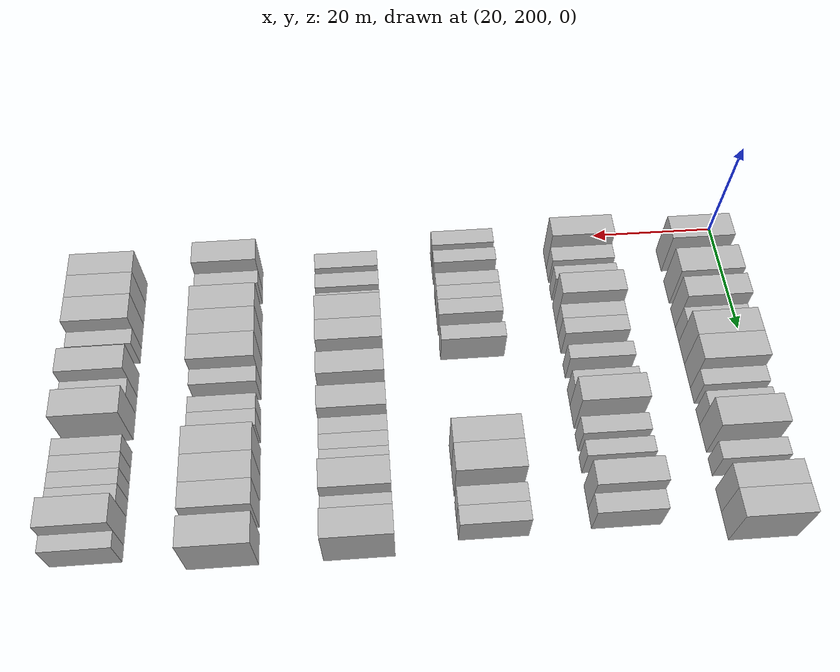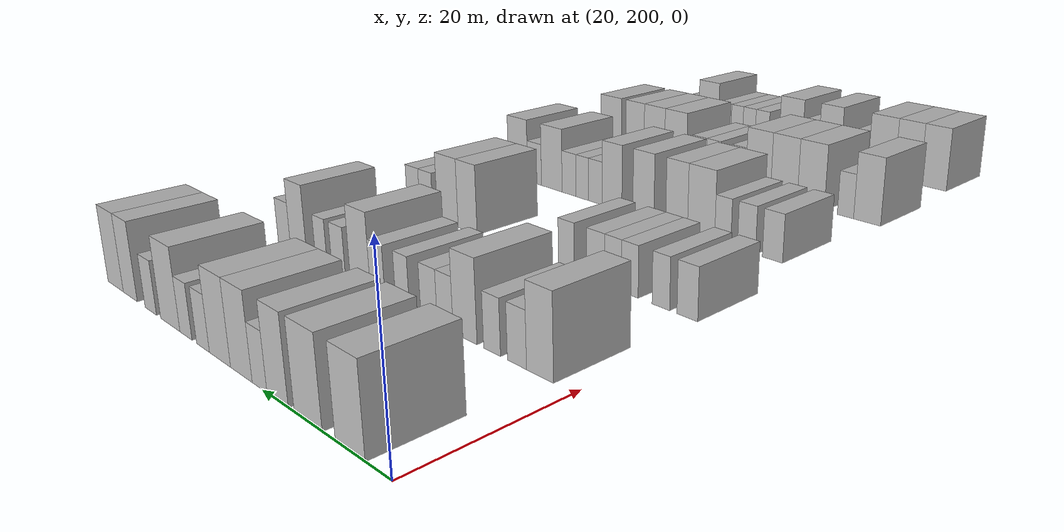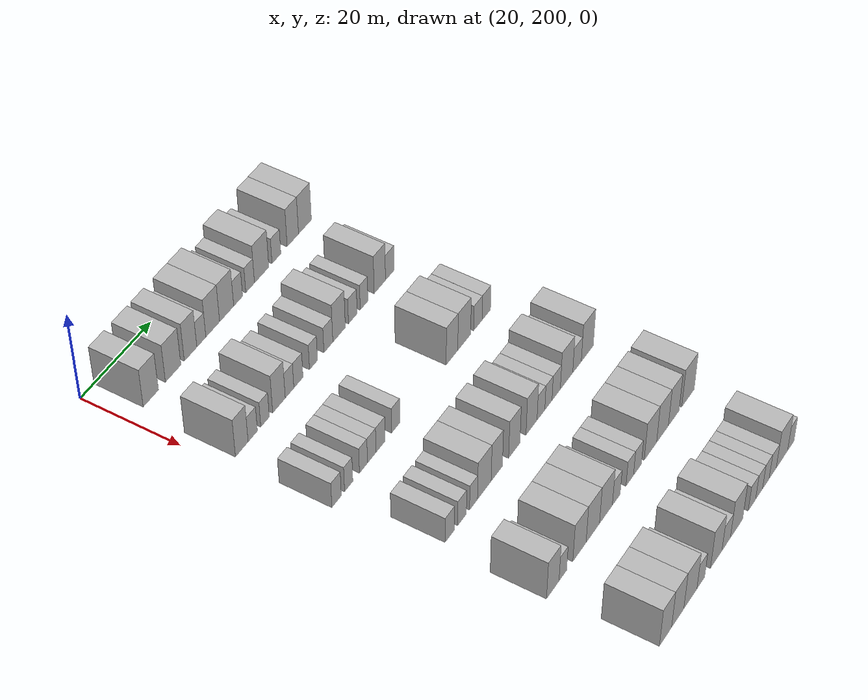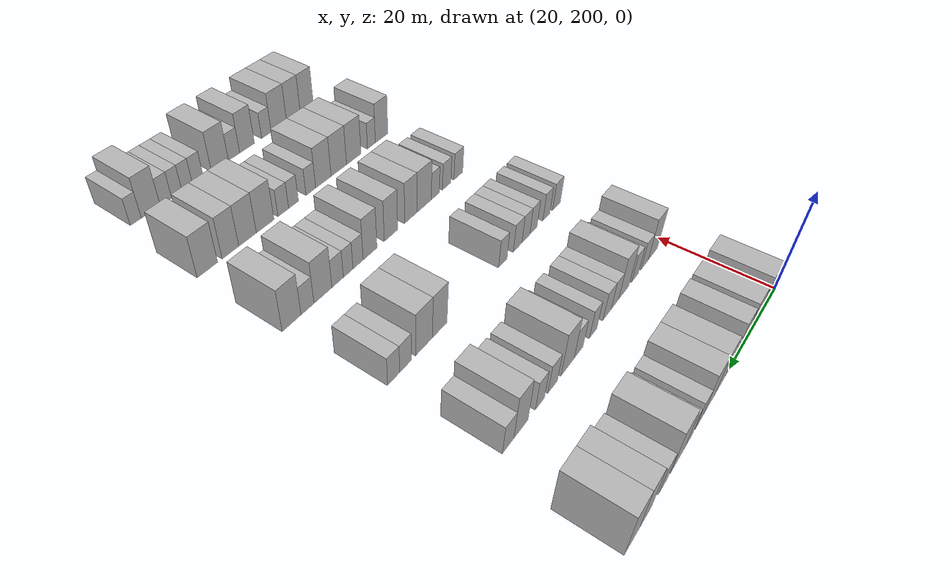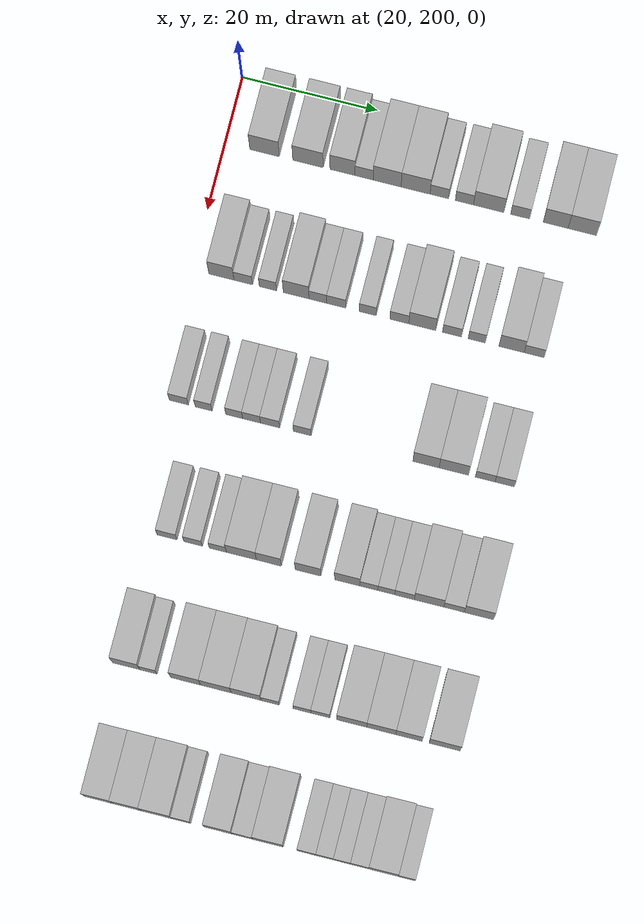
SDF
<sdf version="1.6">
 <world name="default">
  <model name="building_132">
   <static>1</static>
   <pose>25.0000 205.8485 0 0.000000 0.000000 0.000000</pose>
   <link name="link">
    <pose>0 0 4.50 0 0 0</pose>
    <collision name="collision"><geometry><box><size>10.0000 4.3487 9.0000</size></box></geometry></collision>
    <visual name="visual">
     <cast_shadows>0</cast_shadows>
     <geometry><box><size>10.0000 4.3487 9.0000</size></box></geometry>
     <material>
      <script>
       <uri>model://HANNAS_wall/materials/scripts</uri>
       <uri>model://HANNAS_wall/materials/textures</uri>
       <name>vrc/HANNAS_wall</name>
      </script>
     </material>
    </visual>
   </link>
  </model>
  <model name="building_133">
   <static>1</static>
   <pose>25.0000 212.2656 0 0.000000 0.000000 0.000000</pose>
   <link name="link">
    <pose>0 0 4.50 0 0 0</pose>
    <collision name="collision"><geometry><box><size>10.0000 4.4857 9.0000</size></box></geometry></collision>
    <visual name="visual">
     <cast_shadows>0</cast_shadows>
     <geometry><box><size>10.0000 4.4857 9.0000</size></box></geometry>
     <material>
      <script>
       <uri>model://HANNAS_wall/materials/scripts</uri>
       <uri>model://HANNAS_wall/materials/textures</uri>
       <name>vrc/HANNAS_wall</name>
      </script>
     </material>
    </visual>
   </link>
  </model>
  <model name="building_134">
   <static>1</static>
   <pose>25.0000 217.3530 0 0.000000 0.000000 0.000000</pose>
   <link name="link">
    <pose>0 0 4.50 0 0 0</pose>
    <collision name="collision"><geometry><box><size>10.0000 3.6891 9.0000</size></box></geometry></collision>
    <visual name="visual">
     <cast_shadows>0</cast_shadows>
     <geometry><box><size>10.0000 3.6891 9.0000</size></box></geometry>
     <material>
      <script>
       <uri>model://HANNAS_wall/materials/scripts</uri>
       <uri>model://HANNAS_wall/materials/textures</uri>
       <name>vrc/HANNAS_wall</name>
      </script>
     </material>
    </visual>
   </link>
  </model>
  <model name="building_135">
   <static>1</static>
   <pose>25.0000 220.5337 0 0.000000 0.000000 0.000000</pose>
   <link name="link">
    <pose>0 0 3.00 0 0 0</pose>
    <collision name="collision"><geometry><box><size>10.0000 2.6723 6.0000</size></box></geometry></collision>
    <visual name="visual">
     <cast_shadows>0</cast_shadows>
     <geometry><box><size>10.0000 2.6723 6.0000</size></box></geometry>
     <material>
      <script>
       <uri>model://HANNAS_wall/materials/scripts</uri>
       <uri>model://HANNAS_wall/materials/textures</uri>
       <name>vrc/HANNAS_wall</name>
      </script>
     </material>
    </visual>
   </link>
  </model>
  <model name="building_136">
   <static>1</static>
   <pose>25.0000 223.9278 0 0.000000 0.000000 0.000000</pose>
   <link name="link">
    <pose>0 0 4.50 0 0 0</pose>
    <collision name="collision"><geometry><box><size>10.0000 4.1159 9.0000</size></box></geometry></collision>
    <visual name="visual">
     <cast_shadows>0</cast_shadows>
     <geometry><box><size>10.0000 4.1159 9.0000</size></box></geometry>
     <material>
      <script>
       <uri>model://HANNAS_wall/materials/scripts</uri>
       <uri>model://HANNAS_wall/materials/textures</uri>
       <name>vrc/HANNAS_wall</name>
      </script>
     </material>
    </visual>
   </link>
  </model>
  <model name="building_137">
   <static>1</static>
   <pose>25.0000 228.1173 0 0.000000 0.000000 0.000000</pose>
   <link name="link">
    <pose>0 0 4.50 0 0 0</pose>
    <collision name="collision"><geometry><box><size>10.0000 4.2632 9.0000</size></box></geometry></collision>
    <visual name="visual">
     <cast_shadows>0</cast_shadows>
     <geometry><box><size>10.0000 4.2632 9.0000</size></box></geometry>
     <material>
      <script>
       <uri>model://HANNAS_wall/materials/scripts</uri>
       <uri>model://HANNAS_wall/materials/textures</uri>
       <name>vrc/HANNAS_wall</name>
      </script>
     </material>
    </visual>
   </link>
  </model>
  <model name="building_138">
   <static>1</static>
   <pose>25.0000 231.6056 0 0.000000 0.000000 0.000000</pose>
   <link name="link">
    <pose>0 0 3.00 0 0 0</pose>
    <collision name="collision"><geometry><box><size>10.0000 2.7133 6.0000</size></box></geometry></collision>
    <visual name="visual">
     <cast_shadows>0</cast_shadows>
     <geometry><box><size>10.0000 2.7133 6.0000</size></box></geometry>
     <material>
      <script>
       <uri>model://HANNAS_wall/materials/scripts</uri>
       <uri>model://HANNAS_wall/materials/textures</uri>
       <name>vrc/HANNAS_wall</name>
      </script>
     </material>
    </visual>
   </link>
  </model>
  <model name="building_139">
   <static>1</static>
   <pose>25.0000 235.2960 0 0.000000 0.000000 0.000000</pose>
   <link name="link">
    <pose>0 0 3.00 0 0 0</pose>
    <collision name="collision"><geometry><box><size>10.0000 2.6675 6.0000</size></box></geometry></collision>
    <visual name="visual">
     <cast_shadows>0</cast_shadows>
     <geometry><box><size>10.0000 2.6675 6.0000</size></box></geometry>
     <material>
      <script>
       <uri>model://HANNAS_wall/materials/scripts</uri>
       <uri>model://HANNAS_wall/materials/textures</uri>
       <name>vrc/HANNAS_wall</name>
      </script>
     </material>
    </visual>
   </link>
  </model>
  <model name="building_140">
   <static>1</static>
   <pose>25.0000 238.8659 0 0.000000 0.000000 0.000000</pose>
   <link name="link">
    <pose>0 0 4.50 0 0 0</pose>
    <collision name="collision"><geometry><box><size>10.0000 4.4723 9.0000</size></box></geometry></collision>
    <visual name="visual">
     <cast_shadows>0</cast_shadows>
     <geometry><box><size>10.0000 4.4723 9.0000</size></box></geometry>
     <material>
      <script>
       <uri>model://HANNAS_wall/materials/scripts</uri>
       <uri>model://HANNAS_wall/materials/textures</uri>
       <name>vrc/HANNAS_wall</name>
      </script>
     </material>
    </visual>
   </link>
  </model>
  <model name="building_141">
   <static>1</static>
   <pose>25.0000 243.4970 0 0.000000 0.000000 0.000000</pose>
   <link name="link">
    <pose>0 0 3.00 0 0 0</pose>
    <collision name="collision"><geometry><box><size>10.0000 2.7900 6.0000</size></box></geometry></collision>
    <visual name="visual">
     <cast_shadows>0</cast_shadows>
     <geometry><box><size>10.0000 2.7900 6.0000</size></box></geometry>
     <material>
      <script>
       <uri>model://HANNAS_wall/materials/scripts</uri>
       <uri>model://HANNAS_wall/materials/textures</uri>
       <name>vrc/HANNAS_wall</name>
      </script>
     </material>
    </visual>
   </link>
  </model>
  <model name="building_142">
   <static>1</static>
   <pose>25.0000 248.7116 0 0.000000 0.000000 0.000000</pose>
   <link name="link">
    <pose>0 0 4.50 0 0 0</pose>
    <collision name="collision"><geometry><box><size>10.0000 3.6392 9.0000</size></box></geometry></collision>
    <visual name="visual">
     <cast_shadows>0</cast_shadows>
     <geometry><box><size>10.0000 3.6392 9.0000</size></box></geometry>
     <material>
      <script>
       <uri>model://HANNAS_wall/materials/scripts</uri>
       <uri>model://HANNAS_wall/materials/textures</uri>
       <name>vrc/HANNAS_wall</name>
      </script>
     </material>
    </visual>
   </link>
  </model>
  <model name="building_143">
   <static>1</static>
   <pose>25.0000 252.6149 0 0.000000 0.000000 0.000000</pose>
   <link name="link">
    <pose>0 0 4.50 0 0 0</pose>
    <collision name="collision"><geometry><box><size>10.0000 4.1674 9.0000</size></box></geometry></collision>
    <visual name="visual">
     <cast_shadows>0</cast_shadows>
     <geometry><box><size>10.0000 4.1674 9.0000</size></box></geometry>
     <material>
      <script>
       <uri>model://HANNAS_wall/materials/scripts</uri>
       <uri>model://HANNAS_wall/materials/textures</uri>
       <name>vrc/HANNAS_wall</name>
      </script>
     </material>
    </visual>
   </link>
  </model>
  <model name="building_294">
   <static>1</static>
   <pose>44.0000 204.4258 0 0.000000 0.000000 0.000000</pose>
   <link name="link">
    <pose>0 0 4.50 0 0 0</pose>
    <collision name="collision"><geometry><box><size>10.0000 3.6777 9.0000</size></box></geometry></collision>
    <visual name="visual">
     <cast_shadows>0</cast_shadows>
     <geometry><box><size>10.0000 3.6777 9.0000</size></box></geometry>
     <material>
      <script>
       <uri>model://HANNAS_wall/materials/scripts</uri>
       <uri>model://HANNAS_wall/materials/textures</uri>
       <name>vrc/HANNAS_wall</name>
      </script>
     </material>
    </visual>
   </link>
  </model>
  <model name="building_295">
   <static>1</static>
   <pose>44.0000 207.6254 0 0.000000 0.000000 0.000000</pose>
   <link name="link">
    <pose>0 0 3.00 0 0 0</pose>
    <collision name="collision"><geometry><box><size>10.0000 2.7216 6.0000</size></box></geometry></collision>
    <visual name="visual">
     <cast_shadows>0</cast_shadows>
     <geometry><box><size>10.0000 2.7216 6.0000</size></box></geometry>
     <material>
      <script>
       <uri>model://HANNAS_wall/materials/scripts</uri>
       <uri>model://HANNAS_wall/materials/textures</uri>
       <name>vrc/HANNAS_wall</name>
      </script>
     </material>
    </visual>
   </link>
  </model>
  <model name="building_296">
   <static>1</static>
   <pose>44.0000 211.2479 0 0.000000 0.000000 0.000000</pose>
   <link name="link">
    <pose>0 0 3.00 0 0 0</pose>
    <collision name="collision"><geometry><box><size>10.0000 2.5233 6.0000</size></box></geometry></collision>
    <visual name="visual">
     <cast_shadows>0</cast_shadows>
     <geometry><box><size>10.0000 2.5233 6.0000</size></box></geometry>
     <material>
      <script>
       <uri>model://HANNAS_wall/materials/scripts</uri>
       <uri>model://HANNAS_wall/materials/textures</uri>
       <name>vrc/HANNAS_wall</name>
      </script>
     </material>
    </visual>
   </link>
  </model>
  <model name="building_297">
   <static>1</static>
   <pose>44.0000 215.3899 0 0.000000 0.000000 0.000000</pose>
   <link name="link">
    <pose>0 0 4.50 0 0 0</pose>
    <collision name="collision"><geometry><box><size>10.0000 3.7606 9.0000</size></box></geometry></collision>
    <visual name="visual">
     <cast_shadows>0</cast_shadows>
     <geometry><box><size>10.0000 3.7606 9.0000</size></box></geometry>
     <material>
      <script>
       <uri>model://HANNAS_wall/materials/scripts</uri>
       <uri>model://HANNAS_wall/materials/textures</uri>
       <name>vrc/HANNAS_wall</name>
      </script>
     </material>
    </visual>
   </link>
  </model>
  <model name="building_298">
   <static>1</static>
   <pose>44.0000 218.5710 0 0.000000 0.000000 0.000000</pose>
   <link name="link">
    <pose>0 0 3.00 0 0 0</pose>
    <collision name="collision"><geometry><box><size>10.0000 2.6016 6.0000</size></box></geometry></collision>
    <visual name="visual">
     <cast_shadows>0</cast_shadows>
     <geometry><box><size>10.0000 2.6016 6.0000</size></box></geometry>
     <material>
      <script>
       <uri>model://HANNAS_wall/materials/scripts</uri>
       <uri>model://HANNAS_wall/materials/textures</uri>
       <name>vrc/HANNAS_wall</name>
      </script>
     </material>
    </visual>
   </link>
  </model>
  <model name="building_299">
   <static>1</static>
   <pose>44.0000 221.2631 0 0.000000 0.000000 0.000000</pose>
   <link name="link">
    <pose>0 0 3.00 0 0 0</pose>
    <collision name="collision"><geometry><box><size>10.0000 2.7826 6.0000</size></box></geometry></collision>
    <visual name="visual">
     <cast_shadows>0</cast_shadows>
     <geometry><box><size>10.0000 2.7826 6.0000</size></box></geometry>
     <material>
      <script>
       <uri>model://HANNAS_wall/materials/scripts</uri>
       <uri>model://HANNAS_wall/materials/textures</uri>
       <name>vrc/HANNAS_wall</name>
      </script>
     </material>
    </visual>
   </link>
  </model>
  <model name="building_300">
   <static>1</static>
   <pose>44.0000 225.8837 0 0.000000 0.000000 0.000000</pose>
   <link name="link">
    <pose>0 0 3.00 0 0 0</pose>
    <collision name="collision"><geometry><box><size>10.0000 2.4587 6.0000</size></box></geometry></collision>
    <visual name="visual">
     <cast_shadows>0</cast_shadows>
     <geometry><box><size>10.0000 2.4587 6.0000</size></box></geometry>
     <material>
      <script>
       <uri>model://HANNAS_wall/materials/scripts</uri>
       <uri>model://HANNAS_wall/materials/textures</uri>
       <name>vrc/HANNAS_wall</name>
      </script>
     </material>
    </visual>
   </link>
  </model>
  <model name="building_301">
   <static>1</static>
   <pose>44.0000 230.5032 0 0.000000 0.000000 0.000000</pose>
   <link name="link">
    <pose>0 0 3.00 0 0 0</pose>
    <collision name="collision"><geometry><box><size>10.0000 2.7803 6.0000</size></box></geometry></collision>
    <visual name="visual">
     <cast_shadows>0</cast_shadows>
     <geometry><box><size>10.0000 2.7803 6.0000</size></box></geometry>
     <material>
      <script>
       <uri>model://HANNAS_wall/materials/scripts</uri>
       <uri>model://HANNAS_wall/materials/textures</uri>
       <name>vrc/HANNAS_wall</name>
      </script>
     </material>
    </visual>
   </link>
  </model>
  <model name="building_302">
   <static>1</static>
   <pose>44.0000 233.8600 0 0.000000 0.000000 0.000000</pose>
   <link name="link">
    <pose>0 0 4.50 0 0 0</pose>
    <collision name="collision"><geometry><box><size>10.0000 3.9333 9.0000</size></box></geometry></collision>
    <visual name="visual">
     <cast_shadows>0</cast_shadows>
     <geometry><box><size>10.0000 3.9333 9.0000</size></box></geometry>
     <material>
      <script>
       <uri>model://HANNAS_wall/materials/scripts</uri>
       <uri>model://HANNAS_wall/materials/textures</uri>
       <name>vrc/HANNAS_wall</name>
      </script>
     </material>
    </visual>
   </link>
  </model>
  <model name="building_303">
   <static>1</static>
   <pose>44.0000 238.2048 0 0.000000 0.000000 0.000000</pose>
   <link name="link">
    <pose>0 0 3.00 0 0 0</pose>
    <collision name="collision"><geometry><box><size>10.0000 2.7564 6.0000</size></box></geometry></collision>
    <visual name="visual">
     <cast_shadows>0</cast_shadows>
     <geometry><box><size>10.0000 2.7564 6.0000</size></box></geometry>
     <material>
      <script>
       <uri>model://HANNAS_wall/materials/scripts</uri>
       <uri>model://HANNAS_wall/materials/textures</uri>
       <name>vrc/HANNAS_wall</name>
      </script>
     </material>
    </visual>
   </link>
  </model>
  <model name="building_304">
   <static>1</static>
   <pose>44.0000 241.8295 0 0.000000 0.000000 0.000000</pose>
   <link name="link">
    <pose>0 0 3.00 0 0 0</pose>
    <collision name="collision"><geometry><box><size>10.0000 2.4929 6.0000</size></box></geometry></collision>
    <visual name="visual">
     <cast_shadows>0</cast_shadows>
     <geometry><box><size>10.0000 2.4929 6.0000</size></box></geometry>
     <material>
      <script>
       <uri>model://HANNAS_wall/materials/scripts</uri>
       <uri>model://HANNAS_wall/materials/textures</uri>
       <name>vrc/HANNAS_wall</name>
      </script>
     </material>
    </visual>
   </link>
  </model>
  <model name="building_305">
   <static>1</static>
   <pose>44.0000 246.9206 0 0.000000 0.000000 0.000000</pose>
   <link name="link">
    <pose>0 0 4.50 0 0 0</pose>
    <collision name="collision"><geometry><box><size>10.0000 3.6895 9.0000</size></box></geometry></collision>
    <visual name="visual">
     <cast_shadows>0</cast_shadows>
     <geometry><box><size>10.0000 3.6895 9.0000</size></box></geometry>
     <material>
      <script>
       <uri>model://HANNAS_wall/materials/scripts</uri>
       <uri>model://HANNAS_wall/materials/textures</uri>
       <name>vrc/HANNAS_wall</name>
      </script>
     </material>
    </visual>
   </link>
  </model>
  <model name="building_306">
   <static>1</static>
   <pose>44.0000 250.2170 0 0.000000 0.000000 0.000000</pose>
   <link name="link">
    <pose>0 0 3.00 0 0 0</pose>
    <collision name="collision"><geometry><box><size>10.0000 2.9032 6.0000</size></box></geometry></collision>
    <visual name="visual">
     <cast_shadows>0</cast_shadows>
     <geometry><box><size>10.0000 2.9032 6.0000</size></box></geometry>
     <material>
      <script>
       <uri>model://HANNAS_wall/materials/scripts</uri>
       <uri>model://HANNAS_wall/materials/textures</uri>
       <name>vrc/HANNAS_wall</name>
      </script>
     </material>
    </visual>
   </link>
  </model>
  <model name="building_469">
   <static>1</static>
   <pose>63.0000 203.1281 0 0.000000 0.000000 0.000000</pose>
   <link name="link">
    <pose>0 0 3.00 0 0 0</pose>
    <collision name="collision"><geometry><box><size>10.0000 2.7873 6.0000</size></box></geometry></collision>
    <visual name="visual">
     <cast_shadows>0</cast_shadows>
     <geometry><box><size>10.0000 2.7873 6.0000</size></box></geometry>
     <material>
      <script>
       <uri>model://HANNAS_wall/materials/scripts</uri>
       <uri>model://HANNAS_wall/materials/textures</uri>
       <name>vrc/HANNAS_wall</name>
      </script>
     </material>
    </visual>
   </link>
  </model>
  <model name="building_470">
   <static>1</static>
   <pose>63.0000 206.7562 0 0.000000 0.000000 0.000000</pose>
   <link name="link">
    <pose>0 0 3.00 0 0 0</pose>
    <collision name="collision"><geometry><box><size>10.0000 2.4690 6.0000</size></box></geometry></collision>
    <visual name="visual">
     <cast_shadows>0</cast_shadows>
     <geometry><box><size>10.0000 2.4690 6.0000</size></box></geometry>
     <material>
      <script>
       <uri>model://HANNAS_wall/materials/scripts</uri>
       <uri>model://HANNAS_wall/materials/textures</uri>
       <name>vrc/HANNAS_wall</name>
      </script>
     </material>
    </visual>
   </link>
  </model>
  <model name="building_471">
   <static>1</static>
   <pose>63.0000 211.2146 0 0.000000 0.000000 0.000000</pose>
   <link name="link">
    <pose>0 0 3.00 0 0 0</pose>
    <collision name="collision"><geometry><box><size>10.0000 2.4478 6.0000</size></box></geometry></collision>
    <visual name="visual">
     <cast_shadows>0</cast_shadows>
     <geometry><box><size>10.0000 2.4478 6.0000</size></box></geometry>
     <material>
      <script>
       <uri>model://HANNAS_wall/materials/scripts</uri>
       <uri>model://HANNAS_wall/materials/textures</uri>
       <name>vrc/HANNAS_wall</name>
      </script>
     </material>
    </visual>
   </link>
  </model>
  <model name="building_472">
   <static>1</static>
   <pose>63.0000 213.7430 0 0.000000 0.000000 0.000000</pose>
   <link name="link">
    <pose>0 0 3.00 0 0 0</pose>
    <collision name="collision"><geometry><box><size>10.0000 2.6089 6.0000</size></box></geometry></collision>
    <visual name="visual">
     <cast_shadows>0</cast_shadows>
     <geometry><box><size>10.0000 2.6089 6.0000</size></box></geometry>
     <material>
      <script>
       <uri>model://HANNAS_wall/materials/scripts</uri>
       <uri>model://HANNAS_wall/materials/textures</uri>
       <name>vrc/HANNAS_wall</name>
      </script>
     </material>
    </visual>
   </link>
  </model>
  <model name="building_473">
   <static>1</static>
   <pose>63.0000 216.4530 0 0.000000 0.000000 0.000000</pose>
   <link name="link">
    <pose>0 0 3.00 0 0 0</pose>
    <collision name="collision"><geometry><box><size>10.0000 2.8112 6.0000</size></box></geometry></collision>
    <visual name="visual">
     <cast_shadows>0</cast_shadows>
     <geometry><box><size>10.0000 2.8112 6.0000</size></box></geometry>
     <material>
      <script>
       <uri>model://HANNAS_wall/materials/scripts</uri>
       <uri>model://HANNAS_wall/materials/textures</uri>
       <name>vrc/HANNAS_wall</name>
      </script>
     </material>
    </visual>
   </link>
  </model>
  <model name="building_474">
   <static>1</static>
   <pose>63.0000 221.1542 0 0.000000 0.000000 0.000000</pose>
   <link name="link">
    <pose>0 0 3.00 0 0 0</pose>
    <collision name="collision"><geometry><box><size>10.0000 2.5912 6.0000</size></box></geometry></collision>
    <visual name="visual">
     <cast_shadows>0</cast_shadows>
     <geometry><box><size>10.0000 2.5912 6.0000</size></box></geometry>
     <material>
      <script>
       <uri>model://HANNAS_wall/materials/scripts</uri>
       <uri>model://HANNAS_wall/materials/textures</uri>
       <name>vrc/HANNAS_wall</name>
      </script>
     </material>
    </visual>
   </link>
  </model>
  <model name="building_475">
   <static>1</static>
   <pose>63.0000 239.1780 0 0.000000 0.000000 0.000000</pose>
   <link name="link">
    <pose>0 0 4.50 0 0 0</pose>
    <collision name="collision"><geometry><box><size>10.0000 3.8188 9.0000</size></box></geometry></collision>
    <visual name="visual">
     <cast_shadows>0</cast_shadows>
     <geometry><box><size>10.0000 3.8188 9.0000</size></box></geometry>
     <material>
      <script>
       <uri>model://HANNAS_wall/materials/scripts</uri>
       <uri>model://HANNAS_wall/materials/textures</uri>
       <name>vrc/HANNAS_wall</name>
      </script>
     </material>
    </visual>
   </link>
  </model>
  <model name="building_476">
   <static>1</static>
   <pose>63.0000 243.2234 0 0.000000 0.000000 0.000000</pose>
   <link name="link">
    <pose>0 0 4.50 0 0 0</pose>
    <collision name="collision"><geometry><box><size>10.0000 4.2720 9.0000</size></box></geometry></collision>
    <visual name="visual">
     <cast_shadows>0</cast_shadows>
     <geometry><box><size>10.0000 4.2720 9.0000</size></box></geometry>
     <material>
      <script>
       <uri>model://HANNAS_wall/materials/scripts</uri>
       <uri>model://HANNAS_wall/materials/textures</uri>
       <name>vrc/HANNAS_wall</name>
      </script>
     </material>
    </visual>
   </link>
  </model>
  <model name="building_477">
   <static>1</static>
   <pose>63.0000 247.7818 0 0.000000 0.000000 0.000000</pose>
   <link name="link">
    <pose>0 0 3.00 0 0 0</pose>
    <collision name="collision"><geometry><box><size>10.0000 2.8447 6.0000</size></box></geometry></collision>
    <visual name="visual">
     <cast_shadows>0</cast_shadows>
     <geometry><box><size>10.0000 2.8447 6.0000</size></box></geometry>
     <material>
      <script>
       <uri>model://HANNAS_wall/materials/scripts</uri>
       <uri>model://HANNAS_wall/materials/textures</uri>
       <name>vrc/HANNAS_wall</name>
      </script>
     </material>
    </visual>
   </link>
  </model>
  <model name="building_478">
   <static>1</static>
   <pose>63.0000 250.6142 0 0.000000 0.000000 0.000000</pose>
   <link name="link">
    <pose>0 0 3.00 0 0 0</pose>
    <collision name="collision"><geometry><box><size>10.0000 2.8200 6.0000</size></box></geometry></collision>
    <visual name="visual">
     <cast_shadows>0</cast_shadows>
     <geometry><box><size>10.0000 2.8200 6.0000</size></box></geometry>
     <material>
      <script>
       <uri>model://HANNAS_wall/materials/scripts</uri>
       <uri>model://HANNAS_wall/materials/textures</uri>
       <name>vrc/HANNAS_wall</name>
      </script>
     </material>
    </visual>
   </link>
  </model>
  <model name="building_643">
   <static>1</static>
   <pose>82.0000 206.3991 0 0.000000 0.000000 0.000000</pose>
   <link name="link">
    <pose>0 0 3.00 0 0 0</pose>
    <collision name="collision"><geometry><box><size>10.0000 2.8870 6.0000</size></box></geometry></collision>
    <visual name="visual">
     <cast_shadows>0</cast_shadows>
     <geometry><box><size>10.0000 2.8870 6.0000</size></box></geometry>
     <material>
      <script>
       <uri>model://HANNAS_wall/materials/scripts</uri>
       <uri>model://HANNAS_wall/materials/textures</uri>
       <name>vrc/HANNAS_wall</name>
      </script>
     </material>
    </visual>
   </link>
  </model>
  <model name="building_644">
   <static>1</static>
   <pose>82.0000 210.1866 0 0.000000 0.000000 0.000000</pose>
   <link name="link">
    <pose>0 0 3.00 0 0 0</pose>
    <collision name="collision"><geometry><box><size>10.0000 2.6881 6.0000</size></box></geometry></collision>
    <visual name="visual">
     <cast_shadows>0</cast_shadows>
     <geometry><box><size>10.0000 2.6881 6.0000</size></box></geometry>
     <material>
      <script>
       <uri>model://HANNAS_wall/materials/scripts</uri>
       <uri>model://HANNAS_wall/materials/textures</uri>
       <name>vrc/HANNAS_wall</name>
      </script>
     </material>
    </visual>
   </link>
  </model>
  <model name="building_645">
   <static>1</static>
   <pose>82.0000 213.7788 0 0.000000 0.000000 0.000000</pose>
   <link name="link">
    <pose>0 0 3.00 0 0 0</pose>
    <collision name="collision"><geometry><box><size>10.0000 2.4964 6.0000</size></box></geometry></collision>
    <visual name="visual">
     <cast_shadows>0</cast_shadows>
     <geometry><box><size>10.0000 2.4964 6.0000</size></box></geometry>
     <material>
      <script>
       <uri>model://HANNAS_wall/materials/scripts</uri>
       <uri>model://HANNAS_wall/materials/textures</uri>
       <name>vrc/HANNAS_wall</name>
      </script>
     </material>
    </visual>
   </link>
  </model>
  <model name="building_646">
   <static>1</static>
   <pose>82.0000 217.1979 0 0.000000 0.000000 0.000000</pose>
   <link name="link">
    <pose>0 0 4.50 0 0 0</pose>
    <collision name="collision"><geometry><box><size>10.0000 4.3418 9.0000</size></box></geometry></collision>
    <visual name="visual">
     <cast_shadows>0</cast_shadows>
     <geometry><box><size>10.0000 4.3418 9.0000</size></box></geometry>
     <material>
      <script>
       <uri>model://HANNAS_wall/materials/scripts</uri>
       <uri>model://HANNAS_wall/materials/textures</uri>
       <name>vrc/HANNAS_wall</name>
      </script>
     </material>
    </visual>
   </link>
  </model>
  <model name="building_647">
   <static>1</static>
   <pose>82.0000 221.1849 0 0.000000 0.000000 0.000000</pose>
   <link name="link">
    <pose>0 0 4.50 0 0 0</pose>
    <collision name="collision"><geometry><box><size>10.0000 3.6323 9.0000</size></box></geometry></collision>
    <visual name="visual">
     <cast_shadows>0</cast_shadows>
     <geometry><box><size>10.0000 3.6323 9.0000</size></box></geometry>
     <material>
      <script>
       <uri>model://HANNAS_wall/materials/scripts</uri>
       <uri>model://HANNAS_wall/materials/textures</uri>
       <name>vrc/HANNAS_wall</name>
      </script>
     </material>
    </visual>
   </link>
  </model>
  <model name="building_648">
   <static>1</static>
   <pose>82.0000 226.8532 0 0.000000 0.000000 0.000000</pose>
   <link name="link">
    <pose>0 0 4.50 0 0 0</pose>
    <collision name="collision"><geometry><box><size>10.0000 3.7044 9.0000</size></box></geometry></collision>
    <visual name="visual">
     <cast_shadows>0</cast_shadows>
     <geometry><box><size>10.0000 3.7044 9.0000</size></box></geometry>
     <material>
      <script>
       <uri>model://HANNAS_wall/materials/scripts</uri>
       <uri>model://HANNAS_wall/materials/textures</uri>
       <name>vrc/HANNAS_wall</name>
      </script>
     </material>
    </visual>
   </link>
  </model>
  <model name="building_649">
   <static>1</static>
   <pose>82.0000 232.5392 0 0.000000 0.000000 0.000000</pose>
   <link name="link">
    <pose>0 0 4.50 0 0 0</pose>
    <collision name="collision"><geometry><box><size>10.0000 3.6675 9.0000</size></box></geometry></collision>
    <visual name="visual">
     <cast_shadows>0</cast_shadows>
     <geometry><box><size>10.0000 3.6675 9.0000</size></box></geometry>
     <material>
      <script>
       <uri>model://HANNAS_wall/materials/scripts</uri>
       <uri>model://HANNAS_wall/materials/textures</uri>
       <name>vrc/HANNAS_wall</name>
      </script>
     </material>
    </visual>
   </link>
  </model>
  <model name="building_650">
   <static>1</static>
   <pose>82.0000 235.6808 0 0.000000 0.000000 0.000000</pose>
   <link name="link">
    <pose>0 0 3.00 0 0 0</pose>
    <collision name="collision"><geometry><box><size>10.0000 2.6156 6.0000</size></box></geometry></collision>
    <visual name="visual">
     <cast_shadows>0</cast_shadows>
     <geometry><box><size>10.0000 2.6156 6.0000</size></box></geometry>
     <material>
      <script>
       <uri>model://HANNAS_wall/materials/scripts</uri>
       <uri>model://HANNAS_wall/materials/textures</uri>
       <name>vrc/HANNAS_wall</name>
      </script>
     </material>
    </visual>
   </link>
  </model>
  <model name="building_651">
   <static>1</static>
   <pose>82.0000 238.2031 0 0.000000 0.000000 0.000000</pose>
   <link name="link">
    <pose>0 0 3.00 0 0 0</pose>
    <collision name="collision"><geometry><box><size>10.0000 2.4290 6.0000</size></box></geometry></collision>
    <visual name="visual">
     <cast_shadows>0</cast_shadows>
     <geometry><box><size>10.0000 2.4290 6.0000</size></box></geometry>
     <material>
      <script>
       <uri>model://HANNAS_wall/materials/scripts</uri>
       <uri>model://HANNAS_wall/materials/textures</uri>
       <name>vrc/HANNAS_wall</name>
      </script>
     </material>
    </visual>
   </link>
  </model>
  <model name="building_652">
   <static>1</static>
   <pose>82.0000 240.8277 0 0.000000 0.000000 0.000000</pose>
   <link name="link">
    <pose>0 0 3.00 0 0 0</pose>
    <collision name="collision"><geometry><box><size>10.0000 2.8201 6.0000</size></box></geometry></collision>
    <visual name="visual">
     <cast_shadows>0</cast_shadows>
     <geometry><box><size>10.0000 2.8201 6.0000</size></box></geometry>
     <material>
      <script>
       <uri>model://HANNAS_wall/materials/scripts</uri>
       <uri>model://HANNAS_wall/materials/textures</uri>
       <name>vrc/HANNAS_wall</name>
      </script>
     </material>
    </visual>
   </link>
  </model>
  <model name="building_653">
   <static>1</static>
   <pose>82.0000 244.3751 0 0.000000 0.000000 0.000000</pose>
   <link name="link">
    <pose>0 0 4.50 0 0 0</pose>
    <collision name="collision"><geometry><box><size>10.0000 4.2748 9.0000</size></box></geometry></collision>
    <visual name="visual">
     <cast_shadows>0</cast_shadows>
     <geometry><box><size>10.0000 4.2748 9.0000</size></box></geometry>
     <material>
      <script>
       <uri>model://HANNAS_wall/materials/scripts</uri>
       <uri>model://HANNAS_wall/materials/textures</uri>
       <name>vrc/HANNAS_wall</name>
      </script>
     </material>
    </visual>
   </link>
  </model>
  <model name="building_654">
   <static>1</static>
   <pose>82.0000 247.9975 0 0.000000 0.000000 0.000000</pose>
   <link name="link">
    <pose>0 0 3.00 0 0 0</pose>
    <collision name="collision"><geometry><box><size>10.0000 2.9699 6.0000</size></box></geometry></collision>
    <visual name="visual">
     <cast_shadows>0</cast_shadows>
     <geometry><box><size>10.0000 2.9699 6.0000</size></box></geometry>
     <material>
      <script>
       <uri>model://HANNAS_wall/materials/scripts</uri>
       <uri>model://HANNAS_wall/materials/textures</uri>
       <name>vrc/HANNAS_wall</name>
      </script>
     </material>
    </visual>
   </link>
  </model>
  <model name="building_655">
   <static>1</static>
   <pose>82.0000 251.5872 0 0.000000 0.000000 0.000000</pose>
   <link name="link">
    <pose>0 0 4.50 0 0 0</pose>
    <collision name="collision"><geometry><box><size>10.0000 4.2096 9.0000</size></box></geometry></collision>
    <visual name="visual">
     <cast_shadows>0</cast_shadows>
     <geometry><box><size>10.0000 4.2096 9.0000</size></box></geometry>
     <material>
      <script>
       <uri>model://HANNAS_wall/materials/scripts</uri>
       <uri>model://HANNAS_wall/materials/textures</uri>
       <name>vrc/HANNAS_wall</name>
      </script>
     </material>
    </visual>
   </link>
  </model>
  <model name="building_813">
   <static>1</static>
   <pose>101.0000 205.4975 0 0.000000 0.000000 0.000000</pose>
   <link name="link">
    <pose>0 0 4.50 0 0 0</pose>
    <collision name="collision"><geometry><box><size>10.0000 3.9522 9.0000</size></box></geometry></collision>
    <visual name="visual">
     <cast_shadows>0</cast_shadows>
     <geometry><box><size>10.0000 3.9522 9.0000</size></box></geometry>
     <material>
      <script>
       <uri>model://HANNAS_wall/materials/scripts</uri>
       <uri>model://HANNAS_wall/materials/textures</uri>
       <name>vrc/HANNAS_wall</name>
      </script>
     </material>
    </visual>
   </link>
  </model>
  <model name="building_814">
   <static>1</static>
   <pose>101.0000 208.6995 0 0.000000 0.000000 0.000000</pose>
   <link name="link">
    <pose>0 0 3.00 0 0 0</pose>
    <collision name="collision"><geometry><box><size>10.0000 2.4518 6.0000</size></box></geometry></collision>
    <visual name="visual">
     <cast_shadows>0</cast_shadows>
     <geometry><box><size>10.0000 2.4518 6.0000</size></box></geometry>
     <material>
      <script>
       <uri>model://HANNAS_wall/materials/scripts</uri>
       <uri>model://HANNAS_wall/materials/textures</uri>
       <name>vrc/HANNAS_wall</name>
      </script>
     </material>
    </visual>
   </link>
  </model>
  <model name="building_815">
   <static>1</static>
   <pose>101.0000 214.0827 0 0.000000 0.000000 0.000000</pose>
   <link name="link">
    <pose>0 0 4.50 0 0 0</pose>
    <collision name="collision"><geometry><box><size>10.0000 4.3146 9.0000</size></box></geometry></collision>
    <visual name="visual">
     <cast_shadows>0</cast_shadows>
     <geometry><box><size>10.0000 4.3146 9.0000</size></box></geometry>
     <material>
      <script>
       <uri>model://HANNAS_wall/materials/scripts</uri>
       <uri>model://HANNAS_wall/materials/textures</uri>
       <name>vrc/HANNAS_wall</name>
      </script>
     </material>
    </visual>
   </link>
  </model>
  <model name="building_816">
   <static>1</static>
   <pose>101.0000 218.4487 0 0.000000 0.000000 0.000000</pose>
   <link name="link">
    <pose>0 0 4.50 0 0 0</pose>
    <collision name="collision"><geometry><box><size>10.0000 4.4173 9.0000</size></box></geometry></collision>
    <visual name="visual">
     <cast_shadows>0</cast_shadows>
     <geometry><box><size>10.0000 4.4173 9.0000</size></box></geometry>
     <material>
      <script>
       <uri>model://HANNAS_wall/materials/scripts</uri>
       <uri>model://HANNAS_wall/materials/textures</uri>
       <name>vrc/HANNAS_wall</name>
      </script>
     </material>
    </visual>
   </link>
  </model>
  <model name="building_817">
   <static>1</static>
   <pose>101.0000 222.8052 0 0.000000 0.000000 0.000000</pose>
   <link name="link">
    <pose>0 0 4.50 0 0 0</pose>
    <collision name="collision"><geometry><box><size>10.0000 4.2958 9.0000</size></box></geometry></collision>
    <visual name="visual">
     <cast_shadows>0</cast_shadows>
     <geometry><box><size>10.0000 4.2958 9.0000</size></box></geometry>
     <material>
      <script>
       <uri>model://HANNAS_wall/materials/scripts</uri>
       <uri>model://HANNAS_wall/materials/textures</uri>
       <name>vrc/HANNAS_wall</name>
      </script>
     </material>
    </visual>
   </link>
  </model>
  <model name="building_818">
   <static>1</static>
   <pose>101.0000 226.2664 0 0.000000 0.000000 0.000000</pose>
   <link name="link">
    <pose>0 0 3.00 0 0 0</pose>
    <collision name="collision"><geometry><box><size>10.0000 2.6266 6.0000</size></box></geometry></collision>
    <visual name="visual">
     <cast_shadows>0</cast_shadows>
     <geometry><box><size>10.0000 2.6266 6.0000</size></box></geometry>
     <material>
      <script>
       <uri>model://HANNAS_wall/materials/scripts</uri>
       <uri>model://HANNAS_wall/materials/textures</uri>
       <name>vrc/HANNAS_wall</name>
      </script>
     </material>
    </visual>
   </link>
  </model>
  <model name="building_819">
   <static>1</static>
   <pose>101.0000 230.8597 0 0.000000 0.000000 0.000000</pose>
   <link name="link">
    <pose>0 0 3.00 0 0 0</pose>
    <collision name="collision"><geometry><box><size>10.0000 2.5600 6.0000</size></box></geometry></collision>
    <visual name="visual">
     <cast_shadows>0</cast_shadows>
     <geometry><box><size>10.0000 2.5600 6.0000</size></box></geometry>
     <material>
      <script>
       <uri>model://HANNAS_wall/materials/scripts</uri>
       <uri>model://HANNAS_wall/materials/textures</uri>
       <name>vrc/HANNAS_wall</name>
      </script>
     </material>
    </visual>
   </link>
  </model>
  <model name="building_820">
   <static>1</static>
   <pose>101.0000 233.4967 0 0.000000 0.000000 0.000000</pose>
   <link name="link">
    <pose>0 0 3.00 0 0 0</pose>
    <collision name="collision"><geometry><box><size>10.0000 2.7141 6.0000</size></box></geometry></collision>
    <visual name="visual">
     <cast_shadows>0</cast_shadows>
     <geometry><box><size>10.0000 2.7141 6.0000</size></box></geometry>
     <material>
      <script>
       <uri>model://HANNAS_wall/materials/scripts</uri>
       <uri>model://HANNAS_wall/materials/textures</uri>
       <name>vrc/HANNAS_wall</name>
      </script>
     </material>
    </visual>
   </link>
  </model>
  <model name="building_821">
   <static>1</static>
   <pose>101.0000 238.0130 0 0.000000 0.000000 0.000000</pose>
   <link name="link">
    <pose>0 0 4.50 0 0 0</pose>
    <collision name="collision"><geometry><box><size>10.0000 4.3185 9.0000</size></box></geometry></collision>
    <visual name="visual">
     <cast_shadows>0</cast_shadows>
     <geometry><box><size>10.0000 4.3185 9.0000</size></box></geometry>
     <material>
      <script>
       <uri>model://HANNAS_wall/materials/scripts</uri>
       <uri>model://HANNAS_wall/materials/textures</uri>
       <name>vrc/HANNAS_wall</name>
      </script>
     </material>
    </visual>
   </link>
  </model>
  <model name="building_822">
   <static>1</static>
   <pose>101.0000 242.2553 0 0.000000 0.000000 0.000000</pose>
   <link name="link">
    <pose>0 0 4.50 0 0 0</pose>
    <collision name="collision"><geometry><box><size>10.0000 4.1661 9.0000</size></box></geometry></collision>
    <visual name="visual">
     <cast_shadows>0</cast_shadows>
     <geometry><box><size>10.0000 4.1661 9.0000</size></box></geometry>
     <material>
      <script>
       <uri>model://HANNAS_wall/materials/scripts</uri>
       <uri>model://HANNAS_wall/materials/textures</uri>
       <name>vrc/HANNAS_wall</name>
      </script>
     </material>
    </visual>
   </link>
  </model>
  <model name="building_823">
   <static>1</static>
   <pose>101.0000 246.2405 0 0.000000 0.000000 0.000000</pose>
   <link name="link">
    <pose>0 0 4.50 0 0 0</pose>
    <collision name="collision"><geometry><box><size>10.0000 3.8044 9.0000</size></box></geometry></collision>
    <visual name="visual">
     <cast_shadows>0</cast_shadows>
     <geometry><box><size>10.0000 3.8044 9.0000</size></box></geometry>
     <material>
      <script>
       <uri>model://HANNAS_wall/materials/scripts</uri>
       <uri>model://HANNAS_wall/materials/textures</uri>
       <name>vrc/HANNAS_wall</name>
      </script>
     </material>
    </visual>
   </link>
  </model>
  <model name="building_824">
   <static>1</static>
   <pose>101.0000 251.3755 0 0.000000 0.000000 0.000000</pose>
   <link name="link">
    <pose>0 0 4.50 0 0 0</pose>
    <collision name="collision"><geometry><box><size>10.0000 4.4655 9.0000</size></box></geometry></collision>
    <visual name="visual">
     <cast_shadows>0</cast_shadows>
     <geometry><box><size>10.0000 4.4655 9.0000</size></box></geometry>
     <material>
      <script>
       <uri>model://HANNAS_wall/materials/scripts</uri>
       <uri>model://HANNAS_wall/materials/textures</uri>
       <name>vrc/HANNAS_wall</name>
      </script>
     </material>
    </visual>
   </link>
  </model>
  <model name="building_980">
   <static>1</static>
   <pose>120.0000 206.5459 0 0.000000 0.000000 0.000000</pose>
   <link name="link">
    <pose>0 0 4.50 0 0 0</pose>
    <collision name="collision"><geometry><box><size>10.0000 4.0149 9.0000</size></box></geometry></collision>
    <visual name="visual">
     <cast_shadows>0</cast_shadows>
     <geometry><box><size>10.0000 4.0149 9.0000</size></box></geometry>
     <material>
      <script>
       <uri>model://HANNAS_wall/materials/scripts</uri>
       <uri>model://HANNAS_wall/materials/textures</uri>
       <name>vrc/HANNAS_wall</name>
      </script>
     </material>
    </visual>
   </link>
  </model>
  <model name="building_981">
   <static>1</static>
   <pose>120.0000 210.5917 0 0.000000 0.000000 0.000000</pose>
   <link name="link">
    <pose>0 0 4.50 0 0 0</pose>
    <collision name="collision"><geometry><box><size>10.0000 4.0766 9.0000</size></box></geometry></collision>
    <visual name="visual">
     <cast_shadows>0</cast_shadows>
     <geometry><box><size>10.0000 4.0766 9.0000</size></box></geometry>
     <material>
      <script>
       <uri>model://HANNAS_wall/materials/scripts</uri>
       <uri>model://HANNAS_wall/materials/textures</uri>
       <name>vrc/HANNAS_wall</name>
      </script>
     </material>
    </visual>
   </link>
  </model>
  <model name="building_982">
   <static>1</static>
   <pose>120.0000 214.8465 0 0.000000 0.000000 0.000000</pose>
   <link name="link">
    <pose>0 0 4.50 0 0 0</pose>
    <collision name="collision"><geometry><box><size>10.0000 4.4331 9.0000</size></box></geometry></collision>
    <visual name="visual">
     <cast_shadows>0</cast_shadows>
     <geometry><box><size>10.0000 4.4331 9.0000</size></box></geometry>
     <material>
      <script>
       <uri>model://HANNAS_wall/materials/scripts</uri>
       <uri>model://HANNAS_wall/materials/textures</uri>
       <name>vrc/HANNAS_wall</name>
      </script>
     </material>
    </visual>
   </link>
  </model>
  <model name="building_983">
   <static>1</static>
   <pose>120.0000 218.4001 0 0.000000 0.000000 0.000000</pose>
   <link name="link">
    <pose>0 0 3.00 0 0 0</pose>
    <collision name="collision"><geometry><box><size>10.0000 2.6741 6.0000</size></box></geometry></collision>
    <visual name="visual">
     <cast_shadows>0</cast_shadows>
     <geometry><box><size>10.0000 2.6741 6.0000</size></box></geometry>
     <material>
      <script>
       <uri>model://HANNAS_wall/materials/scripts</uri>
       <uri>model://HANNAS_wall/materials/textures</uri>
       <name>vrc/HANNAS_wall</name>
      </script>
     </material>
    </visual>
   </link>
  </model>
  <model name="building_984">
   <static>1</static>
   <pose>120.0000 223.7261 0 0.000000 0.000000 0.000000</pose>
   <link name="link">
    <pose>0 0 4.50 0 0 0</pose>
    <collision name="collision"><geometry><box><size>10.0000 3.9777 9.0000</size></box></geometry></collision>
    <visual name="visual">
     <cast_shadows>0</cast_shadows>
     <geometry><box><size>10.0000 3.9777 9.0000</size></box></geometry>
     <material>
      <script>
       <uri>model://HANNAS_wall/materials/scripts</uri>
       <uri>model://HANNAS_wall/materials/textures</uri>
       <name>vrc/HANNAS_wall</name>
      </script>
     </material>
    </visual>
   </link>
  </model>
  <model name="building_985">
   <static>1</static>
   <pose>120.0000 227.1979 0 0.000000 0.000000 0.000000</pose>
   <link name="link">
    <pose>0 0 3.00 0 0 0</pose>
    <collision name="collision"><geometry><box><size>10.0000 2.9661 6.0000</size></box></geometry></collision>
    <visual name="visual">
     <cast_shadows>0</cast_shadows>
     <geometry><box><size>10.0000 2.9661 6.0000</size></box></geometry>
     <material>
      <script>
       <uri>model://HANNAS_wall/materials/scripts</uri>
       <uri>model://HANNAS_wall/materials/textures</uri>
       <name>vrc/HANNAS_wall</name>
      </script>
     </material>
    </visual>
   </link>
  </model>
  <model name="building_986">
   <static>1</static>
   <pose>120.0000 230.8613 0 0.000000 0.000000 0.000000</pose>
   <link name="link">
    <pose>0 0 4.50 0 0 0</pose>
    <collision name="collision"><geometry><box><size>10.0000 4.3607 9.0000</size></box></geometry></collision>
    <visual name="visual">
     <cast_shadows>0</cast_shadows>
     <geometry><box><size>10.0000 4.3607 9.0000</size></box></geometry>
     <material>
      <script>
       <uri>model://HANNAS_wall/materials/scripts</uri>
       <uri>model://HANNAS_wall/materials/textures</uri>
       <name>vrc/HANNAS_wall</name>
      </script>
     </material>
    </visual>
   </link>
  </model>
  <model name="building_987">
   <static>1</static>
   <pose>120.0000 236.3758 0 0.000000 0.000000 0.000000</pose>
   <link name="link">
    <pose>0 0 3.00 0 0 0</pose>
    <collision name="collision"><geometry><box><size>10.0000 2.6682 6.0000</size></box></geometry></collision>
    <visual name="visual">
     <cast_shadows>0</cast_shadows>
     <geometry><box><size>10.0000 2.6682 6.0000</size></box></geometry>
     <material>
      <script>
       <uri>model://HANNAS_wall/materials/scripts</uri>
       <uri>model://HANNAS_wall/materials/textures</uri>
       <name>vrc/HANNAS_wall</name>
      </script>
     </material>
    </visual>
   </link>
  </model>
  <model name="building_988">
   <static>1</static>
   <pose>120.0000 238.9642 0 0.000000 0.000000 0.000000</pose>
   <link name="link">
    <pose>0 0 3.00 0 0 0</pose>
    <collision name="collision"><geometry><box><size>10.0000 2.5087 6.0000</size></box></geometry></collision>
    <visual name="visual">
     <cast_shadows>0</cast_shadows>
     <geometry><box><size>10.0000 2.5087 6.0000</size></box></geometry>
     <material>
      <script>
       <uri>model://HANNAS_wall/materials/scripts</uri>
       <uri>model://HANNAS_wall/materials/textures</uri>
       <name>vrc/HANNAS_wall</name>
      </script>
     </material>
    </visual>
   </link>
  </model>
  <model name="building_989">
   <static>1</static>
   <pose>120.0000 241.4249 0 0.000000 0.000000 0.000000</pose>
   <link name="link">
    <pose>0 0 3.00 0 0 0</pose>
    <collision name="collision"><geometry><box><size>10.0000 2.4126 6.0000</size></box></geometry></collision>
    <visual name="visual">
     <cast_shadows>0</cast_shadows>
     <geometry><box><size>10.0000 2.4126 6.0000</size></box></geometry>
     <material>
      <script>
       <uri>model://HANNAS_wall/materials/scripts</uri>
       <uri>model://HANNAS_wall/materials/textures</uri>
       <name>vrc/HANNAS_wall</name>
      </script>
     </material>
    </visual>
   </link>
  </model>
  <model name="building_990">
   <static>1</static>
   <pose>120.0000 243.9460 0 0.000000 0.000000 0.000000</pose>
   <link name="link">
    <pose>0 0 3.00 0 0 0</pose>
    <collision name="collision"><geometry><box><size>10.0000 2.6294 6.0000</size></box></geometry></collision>
    <visual name="visual">
     <cast_shadows>0</cast_shadows>
     <geometry><box><size>10.0000 2.6294 6.0000</size></box></geometry>
     <material>
      <script>
       <uri>model://HANNAS_wall/materials/scripts</uri>
       <uri>model://HANNAS_wall/materials/textures</uri>
       <name>vrc/HANNAS_wall</name>
      </script>
     </material>
    </visual>
   </link>
  </model>
  <model name="building_991">
   <static>1</static>
   <pose>120.0000 247.3697 0 0.000000 0.000000 0.000000</pose>
   <link name="link">
    <pose>0 0 4.50 0 0 0</pose>
    <collision name="collision"><geometry><box><size>10.0000 4.2180 9.0000</size></box></geometry></collision>
    <visual name="visual">
     <cast_shadows>0</cast_shadows>
     <geometry><box><size>10.0000 4.2180 9.0000</size></box></geometry>
     <material>
      <script>
       <uri>model://HANNAS_wall/materials/scripts</uri>
       <uri>model://HANNAS_wall/materials/textures</uri>
       <name>vrc/HANNAS_wall</name>
      </script>
     </material>
    </visual>
   </link>
  </model>
  <model name="building_992">
   <static>1</static>
   <pose>120.0000 250.6838 0 0.000000 0.000000 0.000000</pose>
   <link name="link">
    <pose>0 0 3.00 0 0 0</pose>
    <collision name="collision"><geometry><box><size>10.0000 2.4104 6.0000</size></box></geometry></collision>
    <visual name="visual">
     <cast_shadows>0</cast_shadows>
     <geometry><box><size>10.0000 2.4104 6.0000</size></box></geometry>
     <material>
      <script>
       <uri>model://HANNAS_wall/materials/scripts</uri>
       <uri>model://HANNAS_wall/materials/textures</uri>
       <name>vrc/HANNAS_wall</name>
      </script>
     </material>
    </visual>
   </link>
  </model>
 </world>
</sdf>
